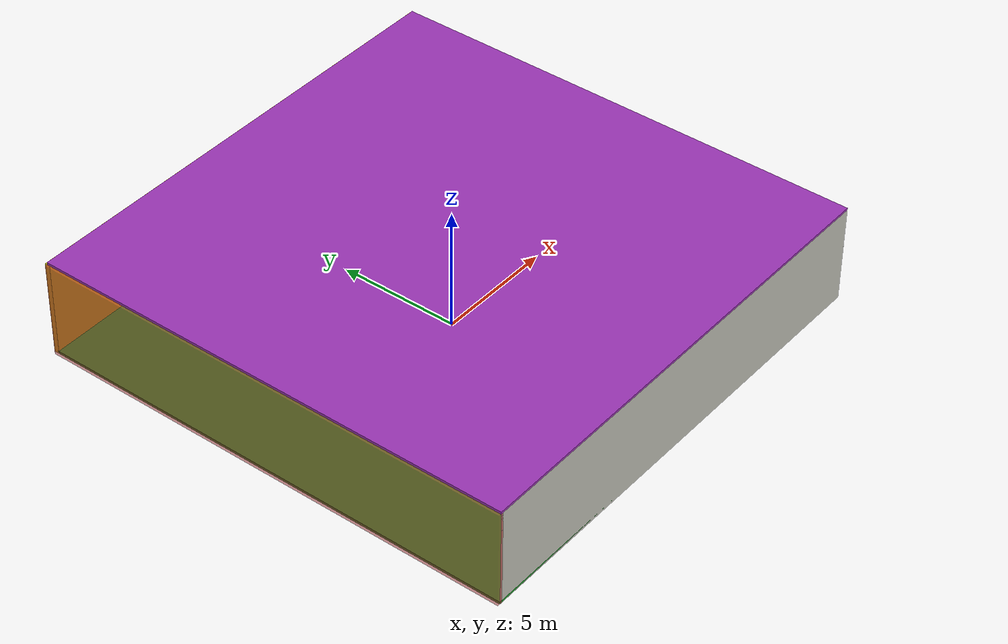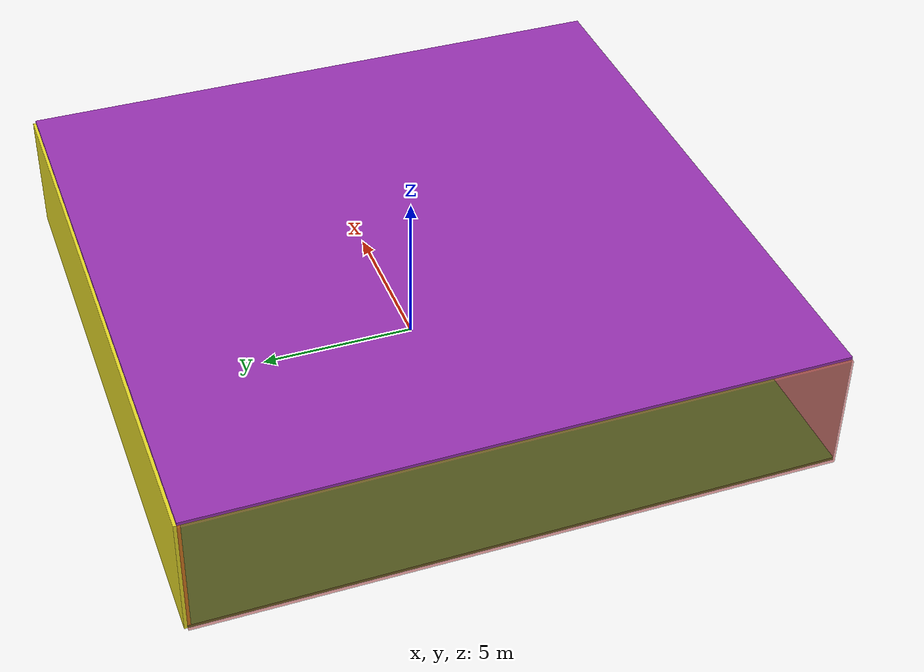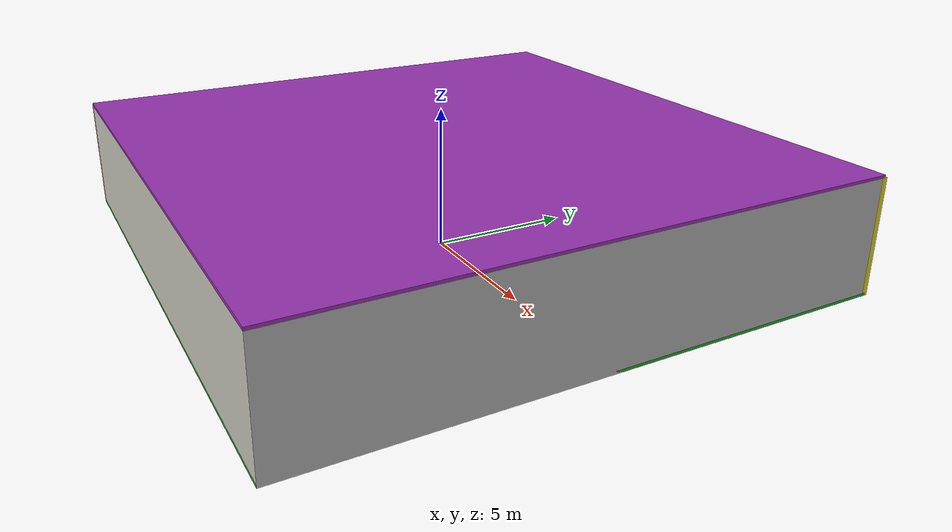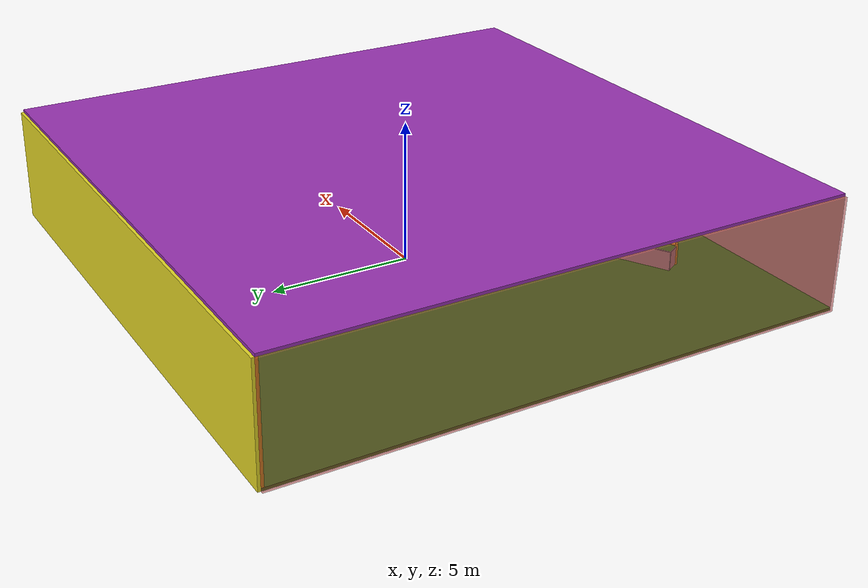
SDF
<sdf version="1.4">
 <world name="default">
  <physics type="ode">
   <max_step_size>0.001</max_step_size>
   <real_time_factor>1</real_time_factor>
   <real_time_update_rate>1000</real_time_update_rate>
   <gravity>0 0 -9.8</gravity>
  </physics>
  <scene><ambient>0.4 0.4 0.4 1</ambient><background>0.7 0.7 0.7 1</background><shadows>1</shadows></scene>
  <model name="Surrounding">
   <static>1</static>
   <link name="Ceiling">
    <collision name="Ceiling_Collision"><geometry><box><size>20 20 0.1</size></box></geometry></collision>
    <visual name="Ceiling_Visual">
     <geometry><box><size>20 20 0.1</size></box></geometry>
     <material>
      <script><uri>file://media/materials/scripts/gazebo.material</uri><name>Gazebo/Purple</name></script>
     </material>
    </visual>
    <pose>0 0 4.05 0 0 0</pose>
   </link>
   <link name="Wall_South">
    <collision name="Wall_South_Collision">
     <geometry><box><size>20 0 4</size></box></geometry>
     <pose>0 0 2 0 -0 0</pose>
    </collision>
    <visual name="Wall_South_Visual">
     <pose>0 0 2 0 -0 0</pose>
     <geometry><box><size>20 0 4</size></box></geometry>
     <material>
      <script><uri>file://media/materials/scripts/gazebo.material</uri><name>Gazebo/PaintedWall</name></script>
     </material>
    </visual>
    <velocity_decay><linear>0</linear><angular>0</angular></velocity_decay>
    <pose>0 -10 0 0 -0 0</pose>
   </link>
   <link name="Wall_East">
    <collision name="Wall_21_Collision">
     <geometry><box><size>20 0 4</size></box></geometry>
     <pose>0 0 2 0 -0 0</pose>
    </collision>
    <visual name="Wall_21_Visual">
     <pose>0 0 2 0 -0 0</pose>
     <geometry><box><size>20 0 4</size></box></geometry>
     <material>
      <script><uri>file://media/materials/scripts/gazebo.material</uri><name>Gazebo/LightOff</name></script>
     </material>
    </visual>
    <velocity_decay><linear>0</linear><angular>0</angular></velocity_decay>
    <pose>10 0 0 0 -0 1.5708</pose>
   </link>
   <link name="Wall_North">
    <collision name="Wall_22_Collision">
     <geometry><box><size>20 0.2 4</size></box></geometry>
     <pose>0 0 2 0 -0 0</pose>
    </collision>
    <visual name="Wall_22_Visual">
     <pose>0 0 2 0 -0 0</pose>
     <geometry><box><size>20 0.2 4</size></box></geometry>
     <material>
      <script><uri>file://media/materials/scripts/gazebo.material</uri><name>Gazebo/Yellow</name></script>
     </material>
    </visual>
    <velocity_decay><linear>0</linear><angular>0</angular></velocity_decay>
    <pose>0 10 0 0 -0 0</pose>
   </link>
   <link name="Wall_West">
    <collision name="Wall_23_Collision">
     <geometry><box><size>20 0.2 4</size></box></geometry>
     <pose>0 0 2 0 -0 0</pose>
    </collision>
    <visual name="Wall_23_Visual">
     <pose>0 0 2 0 -0 0</pose>
     <geometry><box><size>20 0.2 4</size></box></geometry>
     <material>
      <script><uri>file://media/materials/scripts/gazebo.material</uri><name>Gazebo/RedTransparent</name></script>
     </material>
    </visual>
    <velocity_decay><linear>0</linear><angular>0</angular></velocity_decay>
    <pose>-10 0 0 0 0 -1.5708</pose>
   </link>
   <link name="Ground_link">
    <collision name="collision">
     <pose>0 0 .05 0 -0 0</pose>
     <geometry><box><size>20 20 0.1</size></box></geometry>
    </collision>
    <visual name="visual">
     <pose>0 0 .05 0 -0 0</pose>
     <geometry><box><size>20 20 0.1</size></box></geometry>
     <material>
      <script><uri>file://media/materials/scripts/gazebo.material</uri><name>Gazebo/Green</name></script>
     </material>
    </visual>
   </link>
   <static>1</static>
  </model>
  <spherical_coordinates>
   <surface_model>EARTH_WGS84</surface_model>
   <latitude_deg>0</latitude_deg>
   <longitude_deg>0</longitude_deg>
   <elevation>0</elevation>
   <heading_deg>0</heading_deg>
  </spherical_coordinates>
  <light name="lightball_0" type="diffuse">
   <diffuse>0.8 0.8 0.8 1</diffuse>
   <specular>0.2 0.2 0.2 1</specular>
   <attenuation>
    <range>100</range>
    <constant>0.7</constant>
    <linear>0.01</linear>
    <quadratic>0.001</quadratic>
   </attenuation>
   <direction>-0.5 0.1 -0.9</direction>
   <pose>-5.5129287373 -4.3117722182 2.40359473801 0 0 0</pose>
  </light>
  <light name="lightball_1" type="diffuse">
   <diffuse>0.8 0.8 0.8 1</diffuse>
   <specular>0.2 0.2 0.2 1</specular>
   <attenuation>
    <range>100</range>
    <constant>0.7</constant>
    <linear>0.01</linear>
    <quadratic>0.001</quadratic>
   </attenuation>
   <direction>-0.5 0.1 -0.9</direction>
   <pose>-5.85303457195 4.54500816446 2.96158186888 0 0 0</pose>
  </light>
  <light name="lightball_2" type="diffuse">
   <diffuse>0.8 0.8 0.8 1</diffuse>
   <specular>0.2 0.2 0.2 1</specular>
   <attenuation>
    <range>100</range>
    <constant>0.7</constant>
    <linear>0.01</linear>
    <quadratic>0.001</quadratic>
   </attenuation>
   <direction>-0.5 0.1 -0.9</direction>
   <pose>-0.765633114393 1.32882531788 3.31933576343 0 0 0</pose>
  </light>
  <light name="lightball_3" type="diffuse">
   <diffuse>0.8 0.8 0.8 1</diffuse>
   <specular>0.2 0.2 0.2 1</specular>
   <attenuation>
    <range>100</range>
    <constant>0.7</constant>
    <linear>0.01</linear>
    <quadratic>0.001</quadratic>
   </attenuation>
   <direction>-0.5 0.1 -0.9</direction>
   <pose>-5.17261887621 9.34258339511 1.84308540918 0 0 0</pose>
  </light>
  <light name="lightball_4" type="diffuse">
   <diffuse>0.8 0.8 0.8 1</diffuse>
   <specular>0.2 0.2 0.2 1</specular>
   <attenuation>
    <range>100</range>
    <constant>0.7</constant>
    <linear>0.01</linear>
    <quadratic>0.001</quadratic>
   </attenuation>
   <direction>-0.5 0.1 -0.9</direction>
   <pose>-8.16444740273 8.53939191739 1.66378459017 0 0 0</pose>
  </light>
  <light name="lightball_5" type="diffuse">
   <diffuse>0.8 0.8 0.8 1</diffuse>
   <specular>0.2 0.2 0.2 1</specular>
   <attenuation>
    <range>100</range>
    <constant>0.7</constant>
    <linear>0.01</linear>
    <quadratic>0.001</quadratic>
   </attenuation>
   <direction>-0.5 0.1 -0.9</direction>
   <pose>2.98250990996 7.38703793134 2.02826301357 0 0 0</pose>
  </light>
  <light name="lightball_6" type="diffuse">
   <diffuse>0.8 0.8 0.8 1</diffuse>
   <specular>0.2 0.2 0.2 1</specular>
   <attenuation>
    <range>100</range>
    <constant>0.7</constant>
    <linear>0.01</linear>
    <quadratic>0.001</quadratic>
   </attenuation>
   <direction>-0.5 0.1 -0.9</direction>
   <pose>7.82263452235 9.34448434054 2.84617980287 0 0 0</pose>
  </light>
  <light name="lightball_7" type="diffuse">
   <diffuse>0.8 0.8 0.8 1</diffuse>
   <specular>0.2 0.2 0.2 1</specular>
   <attenuation>
    <range>100</range>
    <constant>0.7</constant>
    <linear>0.01</linear>
    <quadratic>0.001</quadratic>
   </attenuation>
   <direction>-0.5 0.1 -0.9</direction>
   <pose>-7.36350115487 -7.18153247099 0.671657939272 0 0 0</pose>
  </light>
  <light name="lightball_8" type="diffuse">
   <diffuse>0.8 0.8 0.8 1</diffuse>
   <specular>0.2 0.2 0.2 1</specular>
   <attenuation>
    <range>100</range>
    <constant>0.7</constant>
    <linear>0.01</linear>
    <quadratic>0.001</quadratic>
   </attenuation>
   <direction>-0.5 0.1 -0.9</direction>
   <pose>-5.68152030869 -4.56781833886 3.72748544638 0 0 0</pose>
  </light>
  <light name="lightball_9" type="diffuse">
   <diffuse>0.8 0.8 0.8 1</diffuse>
   <specular>0.2 0.2 0.2 1</specular>
   <attenuation>
    <range>100</range>
    <constant>0.7</constant>
    <linear>0.01</linear>
    <quadratic>0.001</quadratic>
   </attenuation>
   <direction>-0.5 0.1 -0.9</direction>
   <pose>9.19535554779 2.26871566642 2.11688102293 0 0 0</pose>
  </light>
  <light name="lightball_10" type="diffuse">
   <diffuse>0.8 0.8 0.8 1</diffuse>
   <specular>0.2 0.2 0.2 1</specular>
   <attenuation>
    <range>100</range>
    <constant>0.7</constant>
    <linear>0.01</linear>
    <quadratic>0.001</quadratic>
   </attenuation>
   <direction>-0.5 0.1 -0.9</direction>
   <pose>9.14007655277 -5.48220593173 2.70185792007 0 0 0</pose>
  </light>
  <light name="lightball_11" type="diffuse">
   <diffuse>0.8 0.8 0.8 1</diffuse>
   <specular>0.2 0.2 0.2 1</specular>
   <attenuation>
    <range>100</range>
    <constant>0.7</constant>
    <linear>0.01</linear>
    <quadratic>0.001</quadratic>
   </attenuation>
   <direction>-0.5 0.1 -0.9</direction>
   <pose>-0.937567966821 4.65094542095 2.68166731917 0 0 0</pose>
  </light>
  <include>
   <uri>model://robocup_3Dsim_goal</uri>
   <pose>-4.17236752059 -7.16526385689 0 0 0 2.08649225817</pose>
  </include>
  <include>
   <uri>model://textured_shapes</uri>
   <pose>0.71249958477 -0.867217677766 0 0 0 2.51930836056</pose>
  </include>
  <include>
   <uri>model://construction_cone</uri>
   <pose>3.99441023875 3.95261859987 0 0 0 1.29807552411</pose>
  </include>
  <include>
   <uri>model://construction_cone</uri>
   <pose>4.89386688199 6.76002614923 0 0 0 0.650178977804</pose>
  </include>
 </world>
</sdf>

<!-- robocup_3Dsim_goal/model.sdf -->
<sdf version="1.5">
  <model name="robocup_3d_goal">
    <static>true</static>
    <link name="left_post">
      <pose>0 1.05 0.45 0 0 0</pose>
      <collision name="collision">
        <geometry>
          <cylinder>
            <radius>0.05</radius>
            <length>0.9</length>
          </cylinder>
        </geometry>
      </collision>
      <visual name="visual">
        <geometry>
          <cylinder>
            <radius>0.05</radius>
            <length>0.9</length>
          </cylinder>
        </geometry>
        <material>
          <script>
            <uri>file://media/materials/scripts/gazebo.material</uri>
            <name>Gazebo/ZincYellow</name>
          </script>
        </material>
      </visual>
    </link>
    <link name="left_support_horiz_lower">
      <pose>0.30 1.05 0.01 0 0 0</pose>
      <collision name="collision">
        <geometry>
          <box>
            <size>0.50 0.02 0.02</size>
          </box>
        </geometry>
      </collision>
      <visual name="visual">
        <geometry>
          <box>
            <size>0.50 0.02 0.02</size>
          </box>
        </geometry>
        <material>
          <script>
            <uri>file://media/materials/scripts/gazebo.material</uri>
            <name>Gazebo/White</name>
          </script>
        </material>
      </visual>
    </link>
    <link name="left_support_horiz_upper">
      <pose>0.30 1.05 0.79 0 0 0</pose>
      <collision name="collision">
        <geometry>
          <box>
            <size>0.50 0.02 0.02</size>
          </box>
        </geometry>
      </collision>
      <visual name="visual">
        <geometry>
          <box>
            <size>0.50 0.02 0.02</size>
          </box>
        </geometry>
        <material>
          <script>
            <uri>file://media/materials/scripts/gazebo.material</uri>
            <name>Gazebo/White</name>
          </script>
        </material>
      </visual>
    </link>
    <link name="left_support_vertical">
      <pose>0.56 1.05 0.4 0 1.5708 0</pose>
      <collision name="collision">
        <geometry>
          <box>
            <size>0.80 0.02 0.02</size>
          </box>
        </geometry>
      </collision>
      <visual name="visual">
        <geometry>
          <box>
            <size>0.80 0.02 0.02</size>
          </box>
        </geometry>
        <material>
          <script>
            <uri>file://media/materials/scripts/gazebo.material</uri>
            <name>Gazebo/White</name>
          </script>
        </material>
      </visual>
    </link>
    <link name="right_support_horiz_lower">
      <pose>0.30 -1.05 0.01 0 0 0</pose>
      <collision name="collision">
        <geometry>
          <box>
            <size>0.50 0.02 0.02</size>
          </box>
        </geometry>
      </collision>
      <visual name="visual">
        <geometry>
          <box>
            <size>0.50 0.02 0.02</size>
          </box>
        </geometry>
        <material>
          <script>
            <uri>file://media/materials/scripts/gazebo.material</uri>
            <name>Gazebo/White</name>
          </script>
        </material>
      </visual>
    </link>
    <link name="right_support_horiz_upper">
      <pose>0.30 -1.05 0.79 0 0 0</pose>
      <collision name="collision">
        <geometry>
          <box>
            <size>0.50 0.02 0.02</size>
          </box>
        </geometry>
      </collision>
      <visual name="visual">
        <geometry>
          <box>
            <size>0.50 0.02 0.02</size>
          </box>
        </geometry>
        <material>
          <script>
            <uri>file://media/materials/scripts/gazebo.material</uri>
            <name>Gazebo/White</name>
          </script>
        </material>
      </visual>
    </link>
    <link name="right_support_vertical">
      <pose>0.56 -1.05 0.4 0 1.5708 0</pose>
      <collision name="collision">
        <geometry>
          <box>
            <size>0.80 0.02 0.02</size>
          </box>
        </geometry>
      </collision>
      <visual name="visual">
        <geometry>
          <box>
            <size>0.80 0.02 0.02</size>
          </box>
        </geometry>
        <material>
          <script>
            <uri>file://media/materials/scripts/gazebo.material</uri>
            <name>Gazebo/White</name>
          </script>
        </material>
      </visual>
    </link>
    <link name="center_support_horiz_lower">
      <pose>0.56 0 0.01 0 1.5708 0</pose>
      <collision name="collision">
        <geometry>
          <box>
            <size>0.02 2.08 0.02</size>
          </box>
        </geometry>
      </collision>
      <visual name="visual">
        <geometry>
          <box>
            <size>0.02 2.08 0.02</size>
          </box>
        </geometry>
        <material>
          <script>
            <uri>file://media/materials/scripts/gazebo.material</uri>
            <name>Gazebo/White</name>
          </script>
        </material>
      </visual>
    </link>
    <link name="center_support_horiz_upper">
      <pose>0.56 0 0.79 0 1.5708 0</pose>
      <collision name="collision">
        <geometry>
          <box>
            <size>0.02 2.08 0.02</size>
          </box>
        </geometry>
      </collision>
      <visual name="visual">
        <geometry>
          <box>
            <size>0.02 2.08 0.02</size>
          </box>
        </geometry>
        <material>
          <script>
            <uri>file://media/materials/scripts/gazebo.material</uri>
            <name>Gazebo/White</name>
          </script>
        </material>
      </visual>
    </link>
    <link name="right_post">
      <pose>0 -1.05 0.45 0 0 0</pose>
      <collision name="collision">
        <geometry>
          <cylinder>
            <radius>0.05</radius>
            <length>0.9</length>
          </cylinder>
        </geometry>
      </collision>
      <visual name="visual">
        <geometry>
          <cylinder>
            <radius>0.05</radius>
            <length>0.9</length>
          </cylinder>
        </geometry>
        <material>
          <script>
            <uri>file://media/materials/scripts/gazebo.material</uri>
            <name>Gazebo/ZincYellow</name>
          </script>
        </material>
      </visual>
    </link>
    <link name="crossbar">
      <pose>0 0 0.85 1.57 1.57 0</pose>
      <collision name="collision">
        <geometry>
          <cylinder>
            <radius>0.05</radius>
            <length>2.0</length>
          </cylinder>
        </geometry>
      </collision>
      <visual name="visual">
        <geometry>
          <cylinder>
            <radius>0.05</radius>
            <length>2.0</length>
          </cylinder>
        </geometry>
        <material>
          <script>
            <uri>file://media/materials/scripts/gazebo.material</uri>
            <name>Gazebo/ZincYellow</name>
          </script>
        </material>
      </visual>
    </link>
    <link name="center_net">
      <pose>0.56 0 0.40 0 0 0</pose>
      <collision name="collision">
        <geometry>
          <box>
            <size>0.01 2.1 0.80</size>
          </box>
        </geometry>
      </collision>
      <visual name="visual">
        <geometry>
          <box>
            <size>0.01 2.1 0.80</size>
          </box>
        </geometry>
        <material>
          <script>
            <uri>model://../model_source/models/robocup09_spl_field/materials/scripts/</uri>
            <uri>model://../model_source/models/robocup09_spl_field/materials/textures/</uri>
            <name>RoboCup/Net</name>
          </script>
        </material>
      </visual>
    </link>
    <link name="left_net">
      <pose>0.30 1.05 0.40 0 0 0</pose>
      <collision name="collision">
        <geometry>
          <box>
            <size>0.50 0.01 0.76</size>
          </box>
        </geometry>
      </collision>
      <visual name="visual">
        <geometry>
          <box>
            <size>0.50 0.01 0.76</size>
          </box>
        </geometry>
        <material>
          <script>
            <uri>model://../model_source/models/robocup09_spl_field/materials/scripts/</uri>
            <uri>model://../model_source/models/robocup09_spl_field/materials/textures/</uri>
            <name>RoboCup/Net</name>
          </script>
        </material>
      </visual>
    </link>
    <link name="right_net">
      <pose>0.30 -1.05 0.40 0 0 0</pose>
      <collision name="collision">
        <geometry>
          <box>
            <size>0.50 0.01 0.76</size>
          </box>
        </geometry>
      </collision>
      <visual name="visual">
        <geometry>
          <box>
            <size>0.50 0.01 0.76</size>
          </box>
        </geometry>
        <material>
          <script>
            <uri>model://../model_source/models/robocup09_spl_field/materials/scripts/</uri>
            <uri>model://../model_source/models/robocup09_spl_field/materials/textures/</uri>
            <name>RoboCup/Net</name>
          </script>
        </material>
      </visual>
    </link>
  </model>
</sdf>

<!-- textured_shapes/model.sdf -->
<sdf version="1.6">
  <model name="textured_shapes">
    <pose>0 0 0.5 0 0 0</pose>
    <link name="box">
      <pose>0 -1.5 0 0 0 0</pose>
      <collision name="collision">
        <geometry>
          <box>
            <size>1 1 1</size>
          </box>
        </geometry>
      </collision>
      <visual name="visual">
        <geometry>
          <box>
            <size>1 1 1</size>
          </box>
        </geometry>
        <material>
          <script>
            <uri>model://../model_source/models/textured_shapes/materials/scripts</uri>
            <uri>model://../model_source/models/textured_shapes/materials/textures</uri>
            <name>TexturedShape/Squares</name>
          </script>
        </material>
      </visual>
    </link>
    <link name="sphere">
      <collision name="collision">
        <geometry>
          <sphere>
            <radius>0.5</radius>
          </sphere>
        </geometry>
      </collision>
      <visual name="visual">
        <geometry>
          <sphere>
            <radius>0.5</radius>
          </sphere>
        </geometry>
        <material>
          <script>
            <uri>model://../model_source/models/textured_shapes/materials/scripts</uri>
            <uri>model://../model_source/models/textured_shapes/materials/textures</uri>
            <name>TexturedShape/Squares</name>
          </script>
        </material>
      </visual>
    </link>
    <link name="cylinder">
      <pose>0 1.5 0 0 0 0</pose>
      <collision name="collision">
        <geometry>
          <cylinder>
            <radius>0.5</radius>
            <length>1</length>
          </cylinder>
        </geometry>
      </collision>
      <visual name="visual">
        <geometry>
          <cylinder>
            <radius>0.5</radius>
            <length>1</length>
          </cylinder>
        </geometry>
        <material>
          <script>
            <uri>model://../model_source/models/textured_shapes/materials/scripts</uri>
            <uri>model://../model_source/models/textured_shapes/materials/textures</uri>
            <name>TexturedShape/Squares</name>
          </script>
        </material>
      </visual>
    </link>
  </model>
</sdf>

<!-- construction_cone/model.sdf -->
<sdf version="1.5">
  <model name="Construction Cone">
    <link name="link">
      <collision name="collision">
        <geometry>
          <mesh>
            <scale>10 10 10</scale>
            <uri>file://isr-testbed/construction_cone/meshes/construction_cone.dae</uri>
          </mesh>
        </geometry>
      </collision>
      <visual name="visual">
        <geometry>
          <mesh>
            <scale>10 10 10</scale>
            <uri>file://isr-testbed/construction_cone/meshes/construction_cone.dae</uri>
          </mesh>
        </geometry>
      </visual>
    </link>
  </model>
</sdf>
